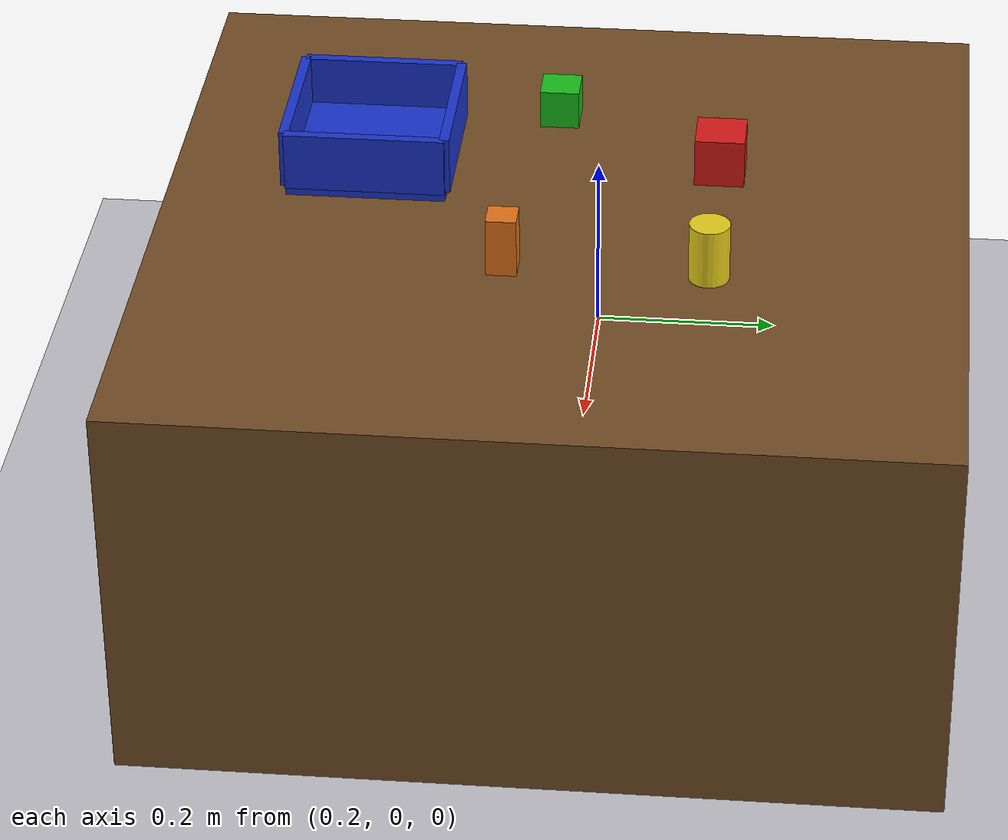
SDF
<?xml version="1.0"?>
<sdf version="1.9">
  <world name="scene">
    <physics name="1ms" type="bullet">
      <max_step_size>0.001</max_step_size>
      <real_time_factor>1.0</real_time_factor>
    </physics>

    <plugin filename="gz-sim-physics-system" name="gz::sim::systems::Physics">
      <engine>
        <filename>gz-physics-bullet-featherstone-plugin</filename>
      </engine>
    </plugin>
    <plugin filename="gz-sim-user-commands-system" name="gz::sim::systems::UserCommands"/>
    <plugin filename="gz-sim-scene-broadcaster-system" name="gz::sim::systems::SceneBroadcaster"/>
    <plugin filename="gz-sim-contact-system" name="gz::sim::systems::Contact"/>
    <!-- NOTE: PosePublisher is a per-model plugin and does nothing at world
         scope. Object poses are taken from the scene broadcaster's
         /world/scene/pose/info instead (bridged to ROS). -->

    <light type="directional" name="sun">
      <cast_shadows>true</cast_shadows>
      <pose>0 0 10 0 0 0</pose>
      <diffuse>0.9 0.9 0.9 1</diffuse>
      <specular>0.2 0.2 0.2 1</specular>
      <direction>-0.5 0.1 -0.9</direction>
    </light>

    <model name="ground_plane">
      <static>true</static>
      <link name="link">
        <collision name="collision">
          <geometry><plane><normal>0 0 1</normal><size>100 100</size></plane></geometry>
        </collision>
        <visual name="visual">
          <geometry><plane><normal>0 0 1</normal><size>100 100</size></plane></geometry>
          <material><ambient>0.75 0.75 0.78 1</ambient><diffuse>0.75 0.75 0.78 1</diffuse></material>
        </visual>
      </link>
    </model>

    <!-- table: 0.8x0.8 m, top at z=0.4, front of robot at x=0.65 -->
    <model name="table">
      <static>true</static>
      <pose>0.65 0 0.2 0 0 0</pose>
      <plugin filename="gz-sim-pose-publisher-system" name="gz::sim::systems::PosePublisher">
        <publish_link_pose>false</publish_link_pose>
        <publish_model_pose>true</publish_model_pose>
        <use_pose_vector_msg>true</use_pose_vector_msg>
        <static_publisher>true</static_publisher>
        <static_update_frequency>2</static_update_frequency>
        <update_frequency>2</update_frequency>
      </plugin>
      <link name="link">
        <collision name="collision">
          <geometry><box><size>0.8 0.8 0.4</size></box></geometry>
        </collision>
        <visual name="visual">
          <geometry><box><size>0.8 0.8 0.4</size></box></geometry>
          <material><ambient>0.45 0.30 0.15 1</ambient><diffuse>0.45 0.30 0.15 1</diffuse></material>
        </visual>
      </link>
    </model>

    <!-- red cube: 5 cm, on the table -->
    <model name="red_cube">
      <pose>0.55 0.15 0.425 0 0 0</pose>
      <plugin filename="gz-sim-pose-publisher-system" name="gz::sim::systems::PosePublisher">
        <publish_link_pose>false</publish_link_pose>
        <publish_model_pose>true</publish_model_pose>
        <use_pose_vector_msg>true</use_pose_vector_msg>
        <update_frequency>10</update_frequency>
      </plugin>
      <link name="link">
        <inertial>
          <mass>0.1</mass>
          <inertia><ixx>4.2e-5</ixx><iyy>4.2e-5</iyy><izz>4.2e-5</izz>
                   <ixy>0</ixy><ixz>0</ixz><iyz>0</iyz></inertia>
        </inertial>
        <collision name="collision">
          <geometry><box><size>0.05 0.05 0.05</size></box></geometry>
          <surface><friction><ode><mu>1.2</mu><mu2>1.2</mu2></ode></friction></surface>
        </collision>
        <visual name="visual">
          <geometry><box><size>0.05 0.05 0.05</size></box></geometry>
          <material><ambient>0.85 0.1 0.1 1</ambient><diffuse>0.85 0.1 0.1 1</diffuse></material>
        </visual>
      </link>
    </model>

    <!-- green cube: 4 cm, on the table -->
    <model name="green_cube">
      <pose>0.45 -0.02 0.42 0 0 0</pose>
      <plugin filename="gz-sim-pose-publisher-system" name="gz::sim::systems::PosePublisher">
        <publish_link_pose>false</publish_link_pose>
        <publish_model_pose>true</publish_model_pose>
        <use_pose_vector_msg>true</use_pose_vector_msg>
        <update_frequency>10</update_frequency>
      </plugin>
      <link name="link">
        <inertial>
          <mass>0.08</mass>
          <inertia><ixx>2.1e-5</ixx><iyy>2.1e-5</iyy><izz>2.1e-5</izz>
                   <ixy>0</ixy><ixz>0</ixz><iyz>0</iyz></inertia>
        </inertial>
        <collision name="collision">
          <geometry><box><size>0.04 0.04 0.04</size></box></geometry>
          <surface><friction><ode><mu>1.2</mu><mu2>1.2</mu2></ode></friction></surface>
        </collision>
        <visual name="visual">
          <geometry><box><size>0.04 0.04 0.04</size></box></geometry>
          <material><ambient>0.1 0.75 0.1 1</ambient><diffuse>0.1 0.75 0.1 1</diffuse></material>
        </visual>
      </link>
    </model>

    <!-- yellow cylinder: 4 cm diameter, 6 cm tall, on the table -->
    <model name="yellow_cylinder">
      <pose>0.75 0.15 0.43 0 0 0</pose>
      <plugin filename="gz-sim-pose-publisher-system" name="gz::sim::systems::PosePublisher">
        <publish_link_pose>false</publish_link_pose>
        <publish_model_pose>true</publish_model_pose>
        <use_pose_vector_msg>true</use_pose_vector_msg>
        <update_frequency>10</update_frequency>
      </plugin>
      <link name="link">
        <inertial>
          <mass>0.08</mass>
          <inertia><ixx>3.2e-5</ixx><iyy>3.2e-5</iyy><izz>1.6e-5</izz>
                   <ixy>0</ixy><ixz>0</ixz><iyz>0</iyz></inertia>
        </inertial>
        <collision name="collision">
          <geometry><cylinder><radius>0.02</radius><length>0.06</length></cylinder></geometry>
          <surface><friction><ode><mu>1.2</mu><mu2>1.2</mu2></ode></friction></surface>
        </collision>
        <visual name="visual">
          <geometry><cylinder><radius>0.02</radius><length>0.06</length></cylinder></geometry>
          <material><ambient>0.9 0.8 0.1 1</ambient><diffuse>0.9 0.8 0.1 1</diffuse></material>
        </visual>
      </link>
    </model>

    <!-- orange block: 3x3x6 cm, on the table -->
    <model name="orange_block">
      <pose>0.75 -0.05 0.43 0 0 0</pose>
      <plugin filename="gz-sim-pose-publisher-system" name="gz::sim::systems::PosePublisher">
        <publish_link_pose>false</publish_link_pose>
        <publish_model_pose>true</publish_model_pose>
        <use_pose_vector_msg>true</use_pose_vector_msg>
        <update_frequency>10</update_frequency>
      </plugin>
      <link name="link">
        <inertial>
          <mass>0.08</mass>
          <inertia><ixx>3.0e-5</ixx><iyy>3.0e-5</iyy><izz>1.2e-5</izz>
                   <ixy>0</ixy><ixz>0</ixz><iyz>0</iyz></inertia>
        </inertial>
        <collision name="collision">
          <geometry><box><size>0.03 0.03 0.06</size></box></geometry>
          <surface><friction><ode><mu>1.2</mu><mu2>1.2</mu2></ode></friction></surface>
        </collision>
        <visual name="visual">
          <geometry><box><size>0.03 0.03 0.06</size></box></geometry>
          <material><ambient>0.9 0.45 0.1 1</ambient><diffuse>0.9 0.45 0.1 1</diffuse></material>
        </visual>
      </link>
    </model>

    <!-- blue box: open tray 16x16 cm, on the table -->
    <model name="blue_box">
      <static>true</static>
      <pose>0.55 -0.2 0.41 0 0 0</pose>
      <plugin filename="gz-sim-pose-publisher-system" name="gz::sim::systems::PosePublisher">
        <publish_link_pose>false</publish_link_pose>
        <publish_model_pose>true</publish_model_pose>
        <use_pose_vector_msg>true</use_pose_vector_msg>
        <static_publisher>true</static_publisher>
        <static_update_frequency>2</static_update_frequency>
        <update_frequency>2</update_frequency>
      </plugin>
      <link name="link">
        <collision name="floor">
          <geometry><box><size>0.16 0.16 0.02</size></box></geometry>
        </collision>
        <visual name="floor_v">
          <geometry><box><size>0.16 0.16 0.02</size></box></geometry>
          <material><ambient>0.1 0.2 0.8 1</ambient><diffuse>0.1 0.2 0.8 1</diffuse></material>
        </visual>
        <collision name="w1"><pose>0.08 0 0.03 0 0 0</pose>
          <geometry><box><size>0.01 0.16 0.06</size></box></geometry></collision>
        <visual name="w1v"><pose>0.08 0 0.03 0 0 0</pose>
          <geometry><box><size>0.01 0.16 0.06</size></box></geometry>
          <material><ambient>0.1 0.2 0.8 1</ambient><diffuse>0.1 0.2 0.8 1</diffuse></material></visual>
        <collision name="w2"><pose>-0.08 0 0.03 0 0 0</pose>
          <geometry><box><size>0.01 0.16 0.06</size></box></geometry></collision>
        <visual name="w2v"><pose>-0.08 0 0.03 0 0 0</pose>
          <geometry><box><size>0.01 0.16 0.06</size></box></geometry>
          <material><ambient>0.1 0.2 0.8 1</ambient><diffuse>0.1 0.2 0.8 1</diffuse></material></visual>
        <collision name="w3"><pose>0 0.08 0.03 0 0 0</pose>
          <geometry><box><size>0.16 0.01 0.06</size></box></geometry></collision>
        <visual name="w3v"><pose>0 0.08 0.03 0 0 0</pose>
          <geometry><box><size>0.16 0.01 0.06</size></box></geometry>
          <material><ambient>0.1 0.2 0.8 1</ambient><diffuse>0.1 0.2 0.8 1</diffuse></material></visual>
        <collision name="w4"><pose>0 -0.08 0.03 0 0 0</pose>
          <geometry><box><size>0.16 0.01 0.06</size></box></geometry></collision>
        <visual name="w4v"><pose>0 -0.08 0.03 0 0 0</pose>
          <geometry><box><size>0.16 0.01 0.06</size></box></geometry>
          <material><ambient>0.1 0.2 0.8 1</ambient><diffuse>0.1 0.2 0.8 1</diffuse></material></visual>
      </link>
    </model>
  </world>
</sdf>
